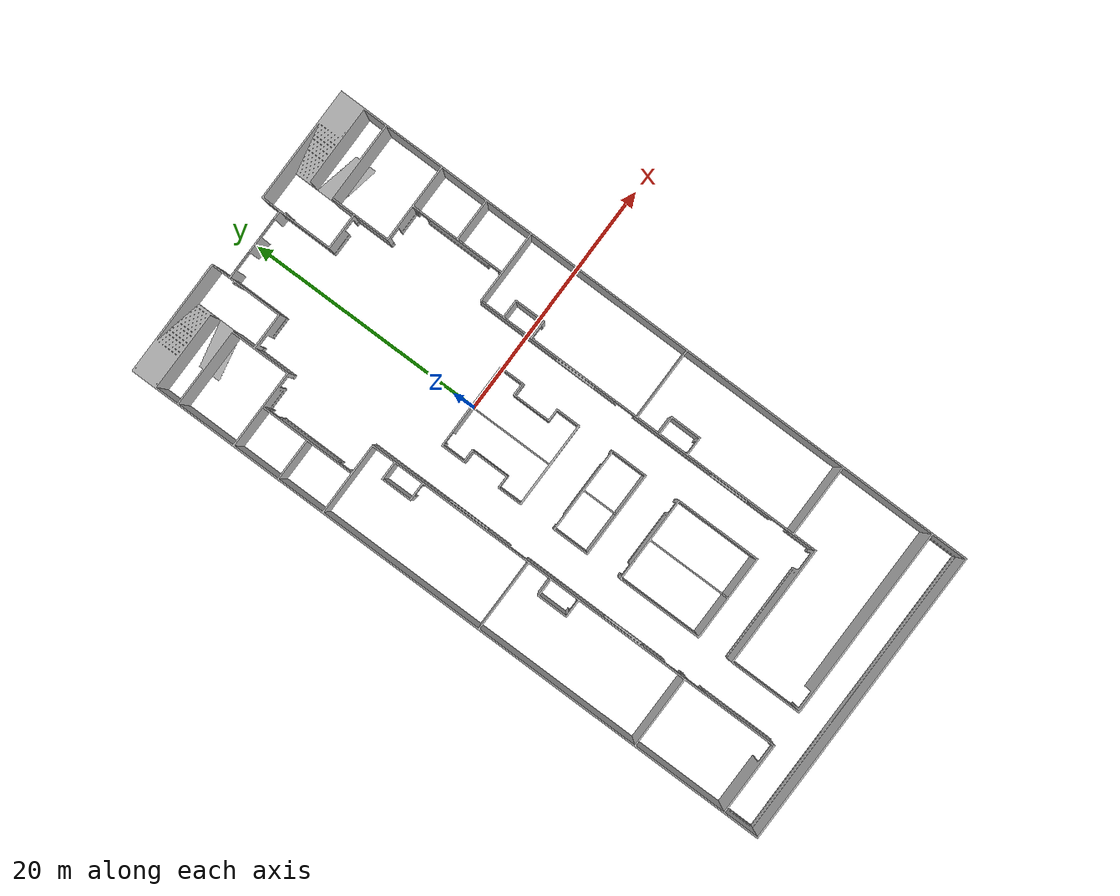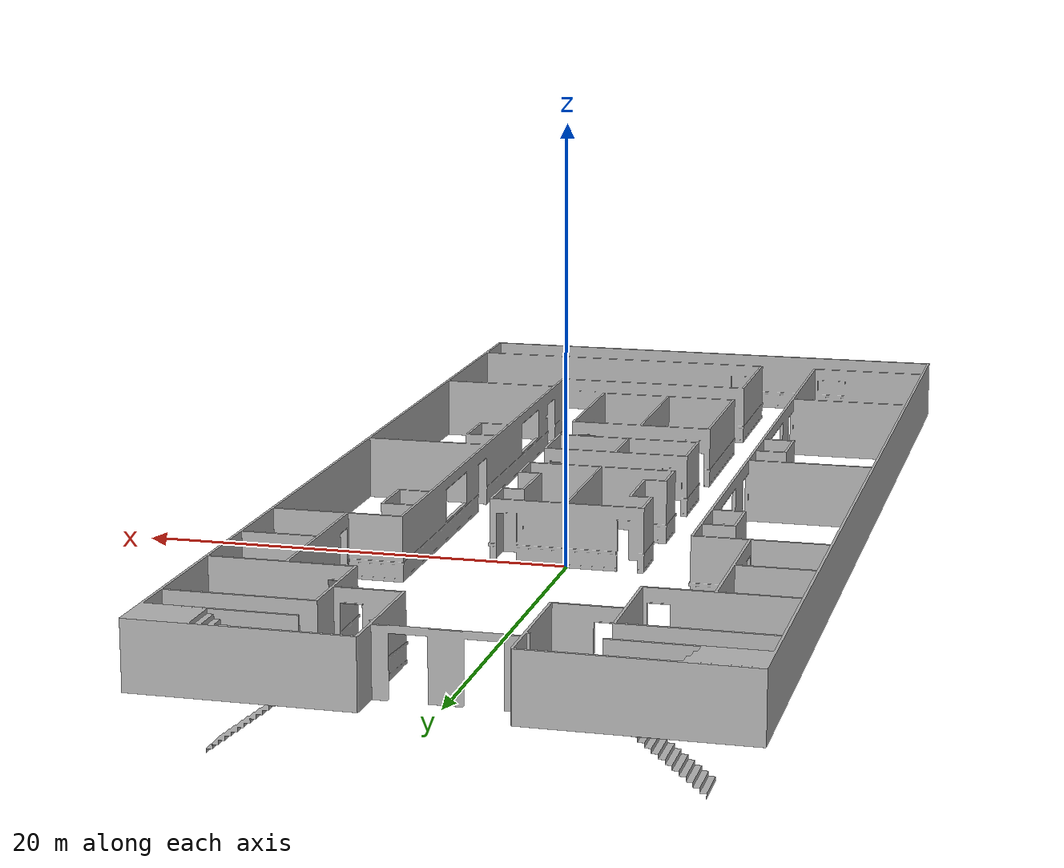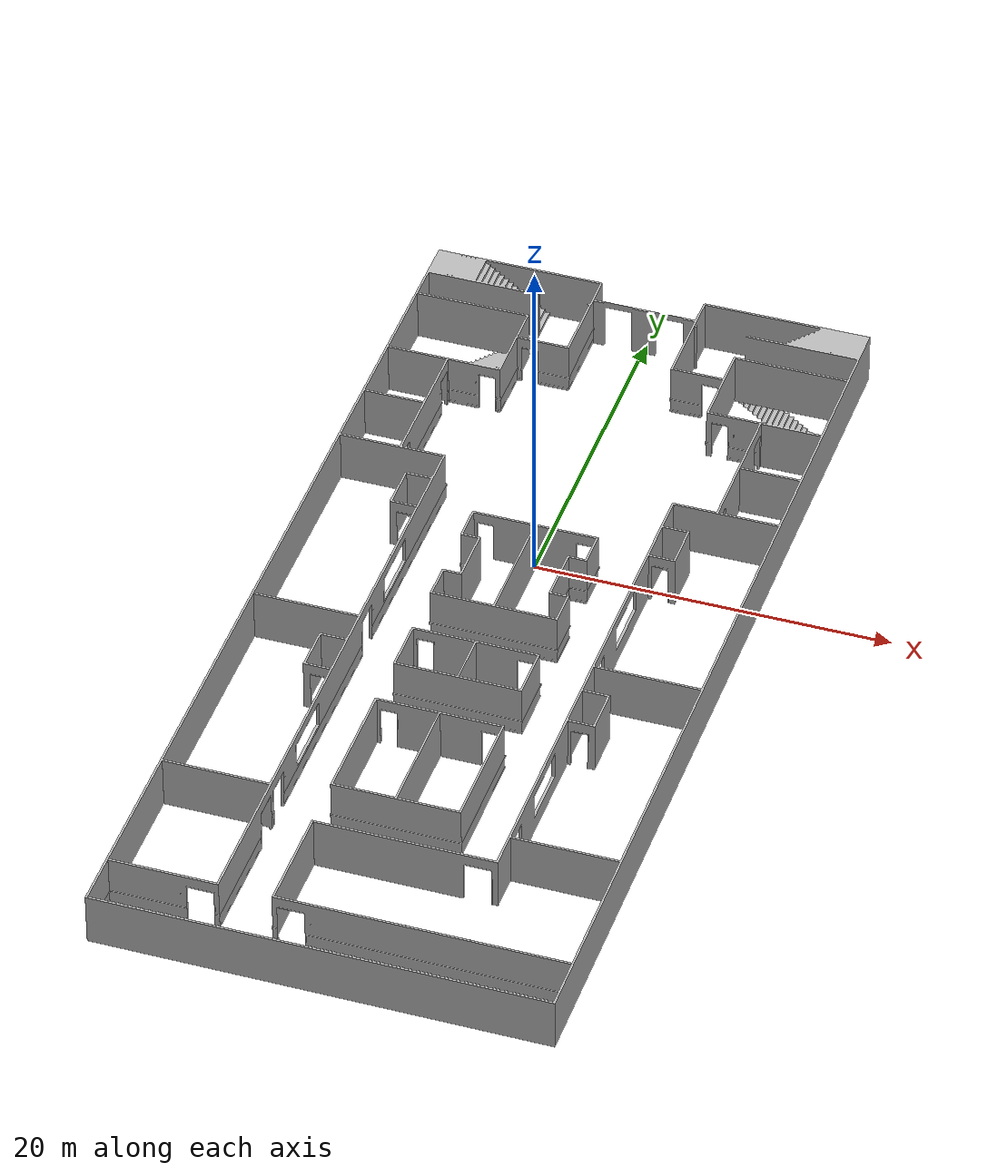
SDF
<?xml version="1.0" ?>
<sdf version="1.6">
  <model name="aws_robomaker_hospital_floor_01_walls">
    <link name="link">
      <visual name="visual">
        <geometry>
          <mesh>
            <uri>model://aws_robomaker_hospital_floor_01_walls/meshes/aws_robomaker_hospital_floor_01_walls_visual.dae</uri>
          </mesh>
        </geometry>
      </visual>
      <collision name="collision">
        <geometry>
          <mesh>
            <uri>model://aws_robomaker_hospital_floor_01_walls/meshes/aws_robomaker_hospital_floor_01_walls_collision.dae</uri>
          </mesh>
        </geometry>
      </collision>
    </link>
    <static>1</static>
  </model>
</sdf>
